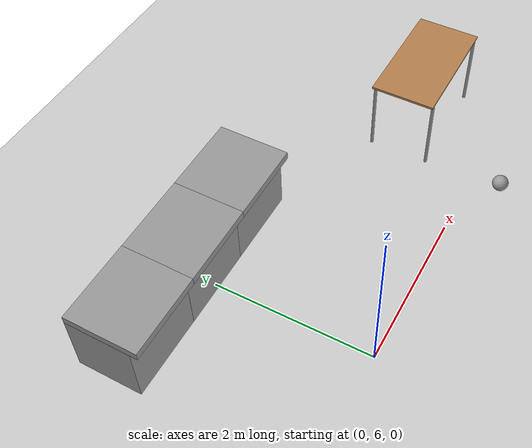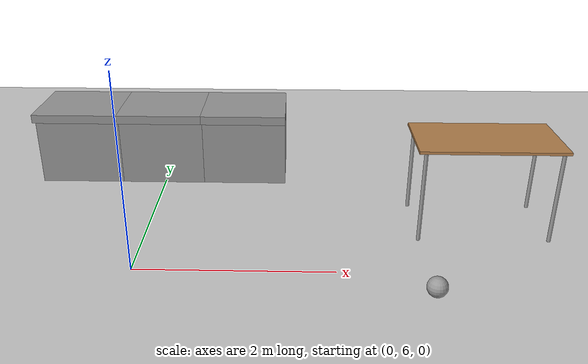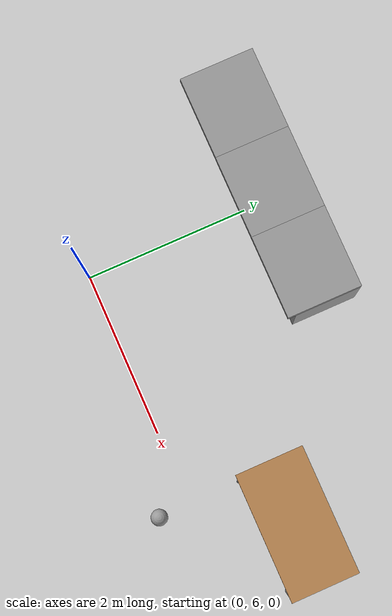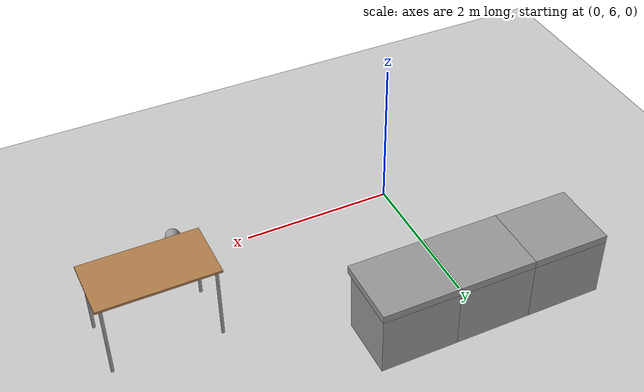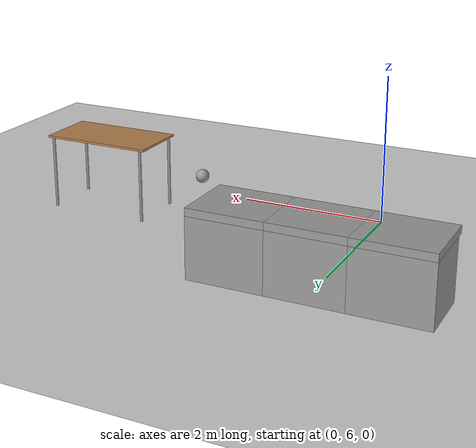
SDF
<sdf version="1.6">
 <world name="default">
  <model name="ground_plane">
   <static>1</static>
   <link name="link">
    <collision name="collision">
     <geometry><plane><normal>0 0 1</normal><size>100 100</size></plane></geometry>
     <surface><friction><ode><mu>100</mu><mu2>50</mu2></ode></friction></surface>
    </collision>
    <visual name="visual">
     <cast_shadows>0</cast_shadows>
     <geometry><plane><normal>0 0 1</normal><size>100 100</size></plane></geometry>
     <material>
      <script><uri>file://media/materials/scripts/gazebo.material</uri><name>Gazebo/Grey</name></script>
     </material>
    </visual>
   </link>
  </model>
  <model name="countertop_clone">
   <link name="link_0">
    <pose>-0.025 0 -0.225 0 -0 0</pose>
    <inertial>
     <mass>1</mass>
     <inertia>
      <ixx>0.166667</ixx>
      <ixy>0</ixy>
      <ixz>0</ixz>
      <iyy>0.166667</iyy>
      <iyz>0</iyz>
      <izz>0.166667</izz>
     </inertia>
    </inertial>
    <visual name="visual">
     <geometry><box><size>0.8 1 0.8</size></box></geometry>
     <material>
      <lighting>1</lighting>
      <script><uri>file://media/materials/scripts/gazebo.material</uri><name>Gazebo/Grey</name></script>
      <shader type="pixel"><normal_map>__default__</normal_map></shader>
      <ambient>1 1 1 1</ambient>
      <diffuse>0.9 0.9 0.9 1</diffuse>
      <specular>0.01 0.01 0.01 1</specular>
      <emissive>0 0 0 1</emissive>
     </material>
    </visual>
    <collision name="collision">
     <geometry><box><size>0.8 1 0.8</size></box></geometry>
     <surface>
      <friction>
       <ode><mu>1</mu><mu2>1</mu2><fdir1>0 0 0</fdir1><slip1>0</slip1><slip2>0</slip2></ode>
       <torsional>
        <coefficient>1</coefficient>
        <patch_radius>0</patch_radius>
        <surface_radius>0</surface_radius>
        <use_patch_radius>1</use_patch_radius>
        <ode><slip>0</slip></ode>
       </torsional>
      </friction>
      <bounce><restitution_coefficient>0</restitution_coefficient><threshold>1e+06</threshold></bounce>
      <contact>
       <collide_without_contact>0</collide_without_contact>
       <collide_without_contact_bitmask>1</collide_without_contact_bitmask>
       <collide_bitmask>1</collide_bitmask>
       <ode>
        <soft_cfm>0</soft_cfm>
        <soft_erp>0.2</soft_erp>
        <kp>1e+13</kp>
        <kd>1</kd>
        <max_vel>0.01</max_vel>
        <min_depth>0</min_depth>
       </ode>
       <bullet>
        <split_impulse>1</split_impulse>
        <split_impulse_penetration_threshold>-0.01</split_impulse_penetration_threshold>
        <soft_cfm>0</soft_cfm>
        <soft_erp>0.2</soft_erp>
        <kp>1e+13</kp>
        <kd>1</kd>
       </bullet>
      </contact>
     </surface>
    </collision>
   </link>
   <link name="link_1">
    <pose>0.025 0 0.225 0 -0 0</pose>
    <inertial>
     <mass>1</mass>
     <inertia>
      <ixx>0.166667</ixx>
      <ixy>0</ixy>
      <ixz>0</ixz>
      <iyy>0.166667</iyy>
      <iyz>0</iyz>
      <izz>0.166667</izz>
     </inertia>
    </inertial>
    <visual name="visual">
     <geometry><box><size>0.9 1 0.1</size></box></geometry>
     <material>
      <lighting>1</lighting>
      <script><uri>file://media/materials/scripts/gazebo.material</uri><name>Gazebo/Grey</name></script>
      <shader type="pixel"><normal_map>__default__</normal_map></shader>
      <ambient>0.1 0.1 0.1 1</ambient>
      <diffuse>0.1 0.1 0.1 1</diffuse>
      <specular>0.01 0.01 0.01 1</specular>
      <emissive>0 0 0 1</emissive>
     </material>
    </visual>
    <collision name="collision">
     <geometry><box><size>0.9 1 0.1</size></box></geometry>
     <surface>
      <friction>
       <ode><mu>1</mu><mu2>1</mu2><fdir1>0 0 0</fdir1><slip1>0</slip1><slip2>0</slip2></ode>
       <torsional>
        <coefficient>1</coefficient>
        <patch_radius>0</patch_radius>
        <surface_radius>0</surface_radius>
        <use_patch_radius>1</use_patch_radius>
        <ode><slip>0</slip></ode>
       </torsional>
      </friction>
      <bounce><restitution_coefficient>0</restitution_coefficient><threshold>1e+06</threshold></bounce>
      <contact>
       <collide_without_contact>0</collide_without_contact>
       <collide_without_contact_bitmask>1</collide_without_contact_bitmask>
       <collide_bitmask>1</collide_bitmask>
       <ode>
        <soft_cfm>0</soft_cfm>
        <soft_erp>0.2</soft_erp>
        <kp>1e+13</kp>
        <kd>1</kd>
        <max_vel>0.01</max_vel>
        <min_depth>0</min_depth>
       </ode>
       <bullet>
        <split_impulse>1</split_impulse>
        <split_impulse_penetration_threshold>-0.01</split_impulse_penetration_threshold>
        <soft_cfm>0</soft_cfm>
        <soft_erp>0.2</soft_erp>
        <kp>1e+13</kp>
        <kd>1</kd>
       </bullet>
      </contact>
     </surface>
    </collision>
   </link>
   <joint name="link_0_JOINT_0" type="revolute">
    <parent>link_0</parent>
    <child>link_1</child>
    <axis>
     <xyz>1 0 0</xyz>
     <use_parent_model_frame>0</use_parent_model_frame>
     <limit>
      <lower>-1.79769e+308</lower>
      <upper>1.79769e+308</upper>
      <effort>-1</effort>
      <velocity>-1</velocity>
     </limit>
     <dynamics>
      <spring_reference>0</spring_reference>
      <spring_stiffness>0</spring_stiffness>
      <damping>0</damping>
      <friction>0</friction>
     </dynamics>
    </axis>
    <physics>
     <ode><limit><cfm>0</cfm><erp>0.2</erp></limit><suspension><cfm>0</cfm><erp>0.2</erp></suspension></ode>
    </physics>
   </joint>
   <static>1</static>
   <pose>-1.0217 8.3348 0.618131 0 0 -1.5707</pose>
  </model>
  <model name="countertop_clone_clone">
   <link name="link_0">
    <pose>-0.025 0 -0.225 0 -0 0</pose>
    <inertial>
     <mass>1</mass>
     <inertia>
      <ixx>0.166667</ixx>
      <ixy>0</ixy>
      <ixz>0</ixz>
      <iyy>0.166667</iyy>
      <iyz>0</iyz>
      <izz>0.166667</izz>
     </inertia>
    </inertial>
    <visual name="visual">
     <geometry><box><size>0.8 1 0.8</size></box></geometry>
     <material>
      <lighting>1</lighting>
      <script><uri>file://media/materials/scripts/gazebo.material</uri><name>Gazebo/Grey</name></script>
      <shader type="pixel"><normal_map>__default__</normal_map></shader>
      <ambient>1 1 1 1</ambient>
      <diffuse>0.9 0.9 0.9 1</diffuse>
      <specular>0.01 0.01 0.01 1</specular>
      <emissive>0 0 0 1</emissive>
     </material>
    </visual>
    <collision name="collision">
     <geometry><box><size>0.8 1 0.8</size></box></geometry>
     <surface>
      <friction>
       <ode><mu>1</mu><mu2>1</mu2><fdir1>0 0 0</fdir1><slip1>0</slip1><slip2>0</slip2></ode>
       <torsional>
        <coefficient>1</coefficient>
        <patch_radius>0</patch_radius>
        <surface_radius>0</surface_radius>
        <use_patch_radius>1</use_patch_radius>
        <ode><slip>0</slip></ode>
       </torsional>
      </friction>
      <bounce><restitution_coefficient>0</restitution_coefficient><threshold>1e+06</threshold></bounce>
      <contact>
       <collide_without_contact>0</collide_without_contact>
       <collide_without_contact_bitmask>1</collide_without_contact_bitmask>
       <collide_bitmask>1</collide_bitmask>
       <ode>
        <soft_cfm>0</soft_cfm>
        <soft_erp>0.2</soft_erp>
        <kp>1e+13</kp>
        <kd>1</kd>
        <max_vel>0.01</max_vel>
        <min_depth>0</min_depth>
       </ode>
       <bullet>
        <split_impulse>1</split_impulse>
        <split_impulse_penetration_threshold>-0.01</split_impulse_penetration_threshold>
        <soft_cfm>0</soft_cfm>
        <soft_erp>0.2</soft_erp>
        <kp>1e+13</kp>
        <kd>1</kd>
       </bullet>
      </contact>
     </surface>
    </collision>
   </link>
   <link name="link_1">
    <pose>0.025 0 0.225 0 -0 0</pose>
    <inertial>
     <mass>1</mass>
     <inertia>
      <ixx>0.166667</ixx>
      <ixy>0</ixy>
      <ixz>0</ixz>
      <iyy>0.166667</iyy>
      <iyz>0</iyz>
      <izz>0.166667</izz>
     </inertia>
    </inertial>
    <visual name="visual">
     <geometry><box><size>0.9 1 0.1</size></box></geometry>
     <material>
      <lighting>1</lighting>
      <script><uri>file://media/materials/scripts/gazebo.material</uri><name>Gazebo/Grey</name></script>
      <shader type="pixel"><normal_map>__default__</normal_map></shader>
      <ambient>0.1 0.1 0.1 1</ambient>
      <diffuse>0.1 0.1 0.1 1</diffuse>
      <specular>0.01 0.01 0.01 1</specular>
      <emissive>0 0 0 1</emissive>
     </material>
    </visual>
    <collision name="collision">
     <geometry><box><size>0.9 1 0.1</size></box></geometry>
     <surface>
      <friction>
       <ode><mu>1</mu><mu2>1</mu2><fdir1>0 0 0</fdir1><slip1>0</slip1><slip2>0</slip2></ode>
       <torsional>
        <coefficient>1</coefficient>
        <patch_radius>0</patch_radius>
        <surface_radius>0</surface_radius>
        <use_patch_radius>1</use_patch_radius>
        <ode><slip>0</slip></ode>
       </torsional>
      </friction>
      <bounce><restitution_coefficient>0</restitution_coefficient><threshold>1e+06</threshold></bounce>
      <contact>
       <collide_without_contact>0</collide_without_contact>
       <collide_without_contact_bitmask>1</collide_without_contact_bitmask>
       <collide_bitmask>1</collide_bitmask>
       <ode>
        <soft_cfm>0</soft_cfm>
        <soft_erp>0.2</soft_erp>
        <kp>1e+13</kp>
        <kd>1</kd>
        <max_vel>0.01</max_vel>
        <min_depth>0</min_depth>
       </ode>
       <bullet>
        <split_impulse>1</split_impulse>
        <split_impulse_penetration_threshold>-0.01</split_impulse_penetration_threshold>
        <soft_cfm>0</soft_cfm>
        <soft_erp>0.2</soft_erp>
        <kp>1e+13</kp>
        <kd>1</kd>
       </bullet>
      </contact>
     </surface>
    </collision>
   </link>
   <joint name="link_0_JOINT_0" type="revolute">
    <parent>link_0</parent>
    <child>link_1</child>
    <axis>
     <xyz>1 0 0</xyz>
     <use_parent_model_frame>0</use_parent_model_frame>
     <limit>
      <lower>-1.79769e+308</lower>
      <upper>1.79769e+308</upper>
      <effort>-1</effort>
      <velocity>-1</velocity>
     </limit>
     <dynamics>
      <spring_reference>0</spring_reference>
      <spring_stiffness>0</spring_stiffness>
      <damping>0</damping>
      <friction>0</friction>
     </dynamics>
    </axis>
    <physics>
     <ode><limit><cfm>0</cfm><erp>0.2</erp></limit><suspension><cfm>0</cfm><erp>0.2</erp></suspension></ode>
    </physics>
   </joint>
   <static>1</static>
   <pose>-0.024827 8.33388 0.618131 0 0 -1.5707</pose>
  </model>
  <model name="countertop_clone_clone_clone">
   <link name="link_0">
    <pose>-0.025 0 -0.225 0 -0 0</pose>
    <inertial>
     <mass>1</mass>
     <inertia>
      <ixx>0.166667</ixx>
      <ixy>0</ixy>
      <ixz>0</ixz>
      <iyy>0.166667</iyy>
      <iyz>0</iyz>
      <izz>0.166667</izz>
     </inertia>
    </inertial>
    <visual name="visual">
     <geometry><box><size>0.8 1 0.8</size></box></geometry>
     <material>
      <lighting>1</lighting>
      <script><uri>file://media/materials/scripts/gazebo.material</uri><name>Gazebo/Grey</name></script>
      <shader type="pixel"><normal_map>__default__</normal_map></shader>
      <ambient>1 1 1 1</ambient>
      <diffuse>0.9 0.9 0.9 1</diffuse>
      <specular>0.01 0.01 0.01 1</specular>
      <emissive>0 0 0 1</emissive>
     </material>
    </visual>
    <collision name="collision">
     <geometry><box><size>0.8 1 0.8</size></box></geometry>
     <surface>
      <friction>
       <ode><mu>1</mu><mu2>1</mu2><fdir1>0 0 0</fdir1><slip1>0</slip1><slip2>0</slip2></ode>
       <torsional>
        <coefficient>1</coefficient>
        <patch_radius>0</patch_radius>
        <surface_radius>0</surface_radius>
        <use_patch_radius>1</use_patch_radius>
        <ode><slip>0</slip></ode>
       </torsional>
      </friction>
      <bounce><restitution_coefficient>0</restitution_coefficient><threshold>1e+06</threshold></bounce>
      <contact>
       <collide_without_contact>0</collide_without_contact>
       <collide_without_contact_bitmask>1</collide_without_contact_bitmask>
       <collide_bitmask>1</collide_bitmask>
       <ode>
        <soft_cfm>0</soft_cfm>
        <soft_erp>0.2</soft_erp>
        <kp>1e+13</kp>
        <kd>1</kd>
        <max_vel>0.01</max_vel>
        <min_depth>0</min_depth>
       </ode>
       <bullet>
        <split_impulse>1</split_impulse>
        <split_impulse_penetration_threshold>-0.01</split_impulse_penetration_threshold>
        <soft_cfm>0</soft_cfm>
        <soft_erp>0.2</soft_erp>
        <kp>1e+13</kp>
        <kd>1</kd>
       </bullet>
      </contact>
     </surface>
    </collision>
   </link>
   <link name="link_1">
    <pose>0.025 0 0.225 0 -0 0</pose>
    <inertial>
     <mass>1</mass>
     <inertia>
      <ixx>0.166667</ixx>
      <ixy>0</ixy>
      <ixz>0</ixz>
      <iyy>0.166667</iyy>
      <iyz>0</iyz>
      <izz>0.166667</izz>
     </inertia>
    </inertial>
    <visual name="visual">
     <geometry><box><size>0.9 1 0.1</size></box></geometry>
     <material>
      <lighting>1</lighting>
      <script><uri>file://media/materials/scripts/gazebo.material</uri><name>Gazebo/Grey</name></script>
      <shader type="pixel"><normal_map>__default__</normal_map></shader>
      <ambient>0.1 0.1 0.1 1</ambient>
      <diffuse>0.1 0.1 0.1 1</diffuse>
      <specular>0.01 0.01 0.01 1</specular>
      <emissive>0 0 0 1</emissive>
     </material>
    </visual>
    <collision name="collision">
     <geometry><box><size>0.9 1 0.1</size></box></geometry>
     <surface>
      <friction>
       <ode><mu>1</mu><mu2>1</mu2><fdir1>0 0 0</fdir1><slip1>0</slip1><slip2>0</slip2></ode>
       <torsional>
        <coefficient>1</coefficient>
        <patch_radius>0</patch_radius>
        <surface_radius>0</surface_radius>
        <use_patch_radius>1</use_patch_radius>
        <ode><slip>0</slip></ode>
       </torsional>
      </friction>
      <bounce><restitution_coefficient>0</restitution_coefficient><threshold>1e+06</threshold></bounce>
      <contact>
       <collide_without_contact>0</collide_without_contact>
       <collide_without_contact_bitmask>1</collide_without_contact_bitmask>
       <collide_bitmask>1</collide_bitmask>
       <ode>
        <soft_cfm>0</soft_cfm>
        <soft_erp>0.2</soft_erp>
        <kp>1e+13</kp>
        <kd>1</kd>
        <max_vel>0.01</max_vel>
        <min_depth>0</min_depth>
       </ode>
       <bullet>
        <split_impulse>1</split_impulse>
        <split_impulse_penetration_threshold>-0.01</split_impulse_penetration_threshold>
        <soft_cfm>0</soft_cfm>
        <soft_erp>0.2</soft_erp>
        <kp>1e+13</kp>
        <kd>1</kd>
       </bullet>
      </contact>
     </surface>
    </collision>
   </link>
   <joint name="link_0_JOINT_0" type="revolute">
    <parent>link_0</parent>
    <child>link_1</child>
    <axis>
     <xyz>1 0 0</xyz>
     <use_parent_model_frame>0</use_parent_model_frame>
     <limit>
      <lower>-1.79769e+308</lower>
      <upper>1.79769e+308</upper>
      <effort>-1</effort>
      <velocity>-1</velocity>
     </limit>
     <dynamics>
      <spring_reference>0</spring_reference>
      <spring_stiffness>0</spring_stiffness>
      <damping>0</damping>
      <friction>0</friction>
     </dynamics>
    </axis>
    <physics>
     <ode><limit><cfm>0</cfm><erp>0.2</erp></limit><suspension><cfm>0</cfm><erp>0.2</erp></suspension></ode>
    </physics>
   </joint>
   <static>1</static>
   <pose>0.972079 8.33407 0.618131 0 0 -1.5707</pose>
  </model>
  <model name="table">
   <static>1</static>
   <link name="link">
    <collision name="surface">
     <pose>0 0 1 0 -0 0</pose>
     <geometry><box><size>1.5 0.8 0.03</size></box></geometry>
     <surface><friction><ode><mu>0.6</mu><mu2>0.6</mu2></ode></friction></surface>
    </collision>
    <visual name="visual1">
     <pose>0 0 1 0 -0 0</pose>
     <geometry><box><size>1.5 0.8 0.03</size></box></geometry>
     <material>
      <script><uri>file://media/materials/scripts/gazebo.material</uri><name>Gazebo/Wood</name></script>
     </material>
    </visual>
    <collision name="front_left_leg">
     <pose>0.68 0.38 0.5 0 -0 0</pose>
     <geometry><cylinder><radius>0.02</radius><length>1</length></cylinder></geometry>
    </collision>
    <visual name="front_left_leg">
     <pose>0.68 0.38 0.5 0 -0 0</pose>
     <geometry><cylinder><radius>0.02</radius><length>1</length></cylinder></geometry>
     <material>
      <script><uri>file://media/materials/scripts/gazebo.material</uri><name>Gazebo/Grey</name></script>
     </material>
    </visual>
    <collision name="front_right_leg">
     <pose>0.68 -0.38 0.5 0 -0 0</pose>
     <geometry><cylinder><radius>0.02</radius><length>1</length></cylinder></geometry>
    </collision>
    <visual name="front_right_leg">
     <pose>0.68 -0.38 0.5 0 -0 0</pose>
     <geometry><cylinder><radius>0.02</radius><length>1</length></cylinder></geometry>
     <material>
      <script><uri>file://media/materials/scripts/gazebo.material</uri><name>Gazebo/Grey</name></script>
     </material>
    </visual>
    <collision name="back_right_leg">
     <pose>-0.68 -0.38 0.5 0 -0 0</pose>
     <geometry><cylinder><radius>0.02</radius><length>1</length></cylinder></geometry>
    </collision>
    <visual name="back_right_leg">
     <pose>-0.68 -0.38 0.5 0 -0 0</pose>
     <geometry><cylinder><radius>0.02</radius><length>1</length></cylinder></geometry>
     <material>
      <script><uri>file://media/materials/scripts/gazebo.material</uri><name>Gazebo/Grey</name></script>
     </material>
    </visual>
    <collision name="back_left_leg">
     <pose>-0.68 0.38 0.5 0 -0 0</pose>
     <geometry><cylinder><radius>0.02</radius><length>1</length></cylinder></geometry>
    </collision>
    <visual name="back_left_leg">
     <pose>-0.68 0.38 0.5 0 -0 0</pose>
     <geometry><cylinder><radius>0.02</radius><length>1</length></cylinder></geometry>
     <material>
      <script><uri>file://media/materials/scripts/gazebo.material</uri><name>Gazebo/Grey</name></script>
     </material>
    </visual>
   </link>
   <pose>3.57159 7.01496 0 0 -0 0</pose>
  </model>
  <model name="my_ball">
   <link name="link_1">
    <inertial>
     <mass>1</mass>
     <inertia><ixx>0.1</ixx><ixy>0</ixy><ixz>0</ixz><iyy>0.1</iyy><iyz>0</iyz><izz>0.1</izz></inertia>
    </inertial>
    <visual name="visual">
     <geometry><sphere><radius>0.1</radius></sphere></geometry>
     <material>
      <lighting>1</lighting>
      <script><uri>file://media/materials/scripts/gazebo.material</uri><name>Gazebo/Grey</name></script>
      <shader type="pixel"><normal_map>__default__</normal_map></shader>
      <ambient>1 1 1 1</ambient>
      <diffuse>1 1 1 1</diffuse>
      <specular>1 1 1 1</specular>
      <emissive>1 1 1 1</emissive>
     </material>
    </visual>
    <collision name="collision">
     <geometry><sphere><radius>0.1</radius></sphere></geometry>
     <surface>
      <friction>
       <ode><mu>1</mu><mu2>1</mu2><fdir1>0 0 0</fdir1><slip1>0</slip1><slip2>0</slip2></ode>
       <torsional>
        <coefficient>1</coefficient>
        <patch_radius>0</patch_radius>
        <surface_radius>0</surface_radius>
        <use_patch_radius>1</use_patch_radius>
        <ode><slip>0</slip></ode>
       </torsional>
      </friction>
      <bounce><restitution_coefficient>0</restitution_coefficient><threshold>1e+06</threshold></bounce>
      <contact>
       <collide_without_contact>0</collide_without_contact>
       <collide_without_contact_bitmask>1</collide_without_contact_bitmask>
       <collide_bitmask>1</collide_bitmask>
       <ode>
        <soft_cfm>0</soft_cfm>
        <soft_erp>0.2</soft_erp>
        <kp>1e+13</kp>
        <kd>1</kd>
        <max_vel>0.01</max_vel>
        <min_depth>0</min_depth>
       </ode>
       <bullet>
        <split_impulse>1</split_impulse>
        <split_impulse_penetration_threshold>-0.01</split_impulse_penetration_threshold>
        <soft_cfm>0</soft_cfm>
        <soft_erp>0.2</soft_erp>
        <kp>1e+13</kp>
        <kd>1</kd>
       </bullet>
      </contact>
     </surface>
    </collision>
   </link>
   <static>0</static>
   <pose>2.90044 5.63516 0.1 0 -0 0</pose>
  </model>
 </world>
</sdf>
